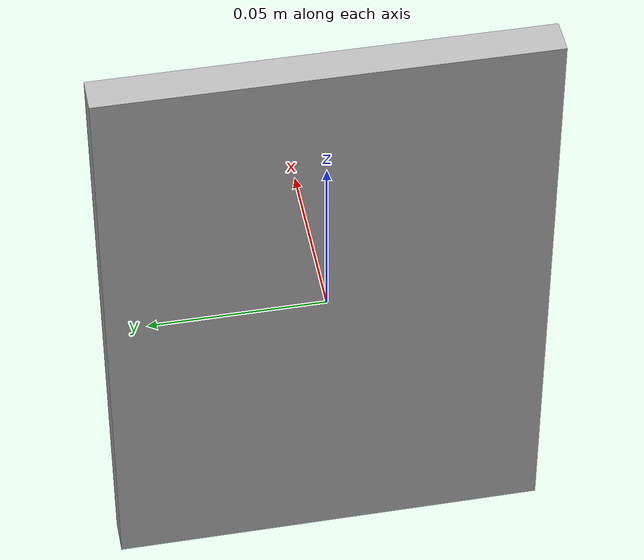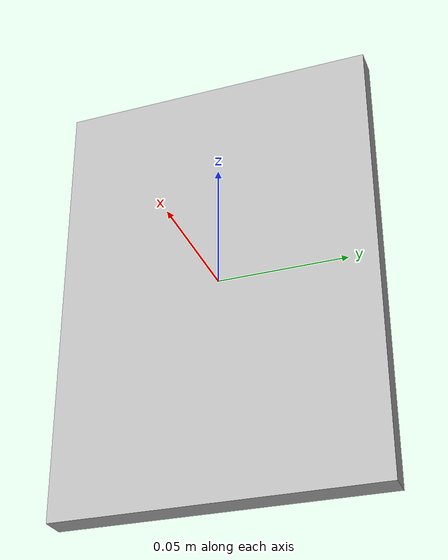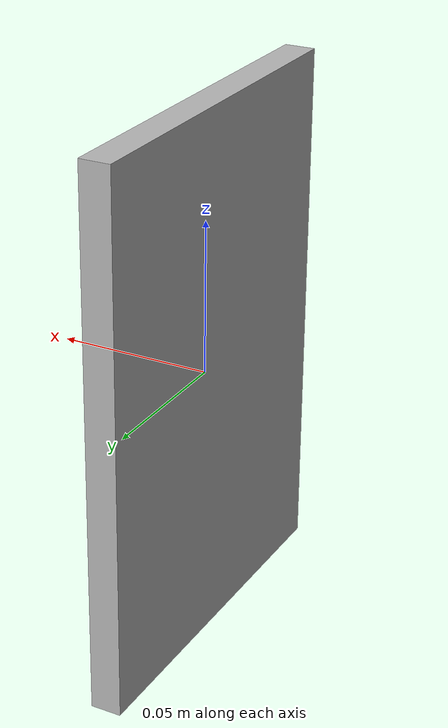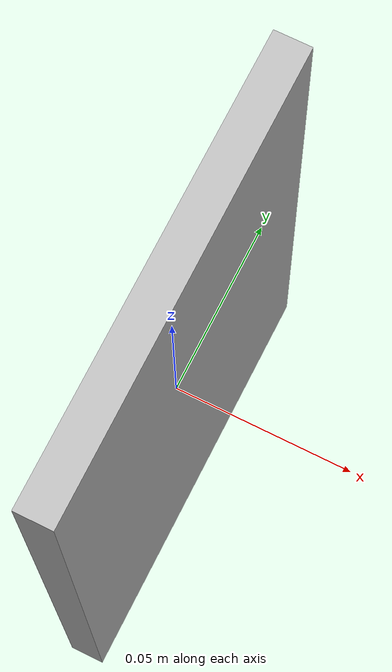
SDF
<?xml version='1.0'?>
<sdf version="1.6">
<model name="go_right">
  <static>true</static>
    <link name="link">
      <visual name="visual">
        <geometry>
          <mesh>
            <uri>model://go_right/meshes/go_right.dae</uri>
          </mesh>
        </geometry>
      </visual>
    </link>
  </model>
</sdf>
